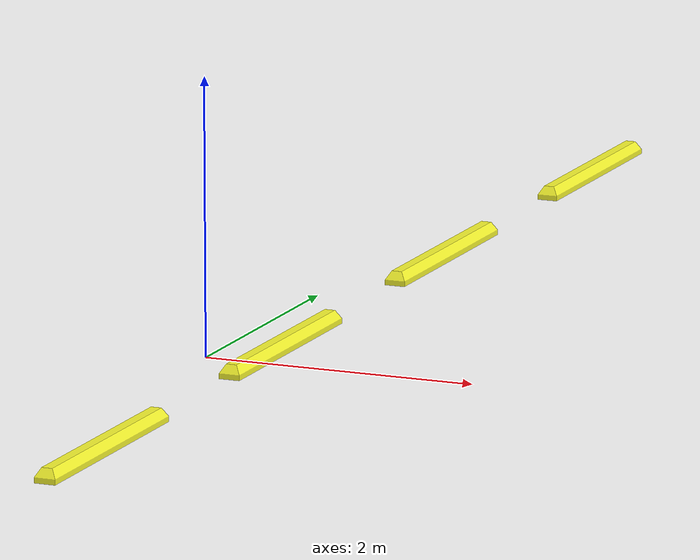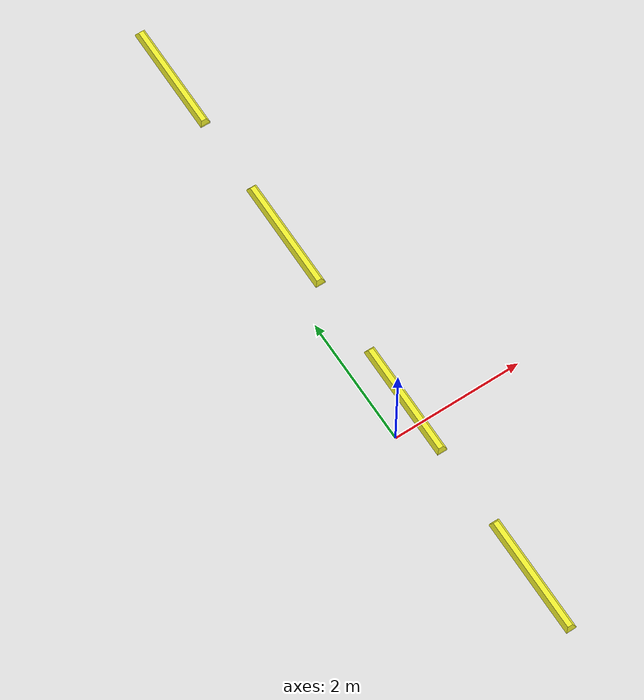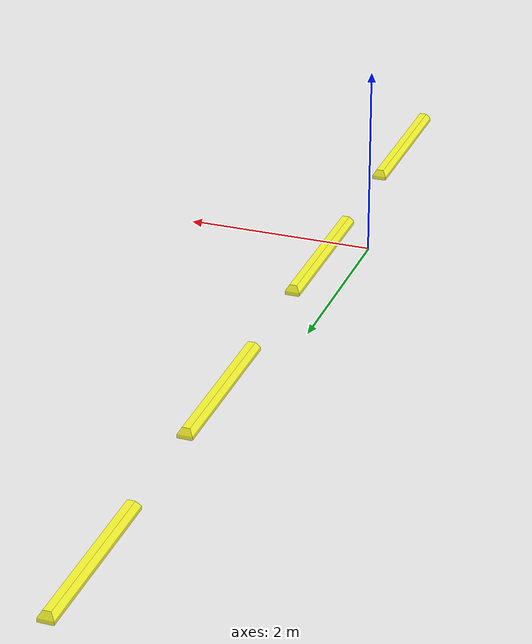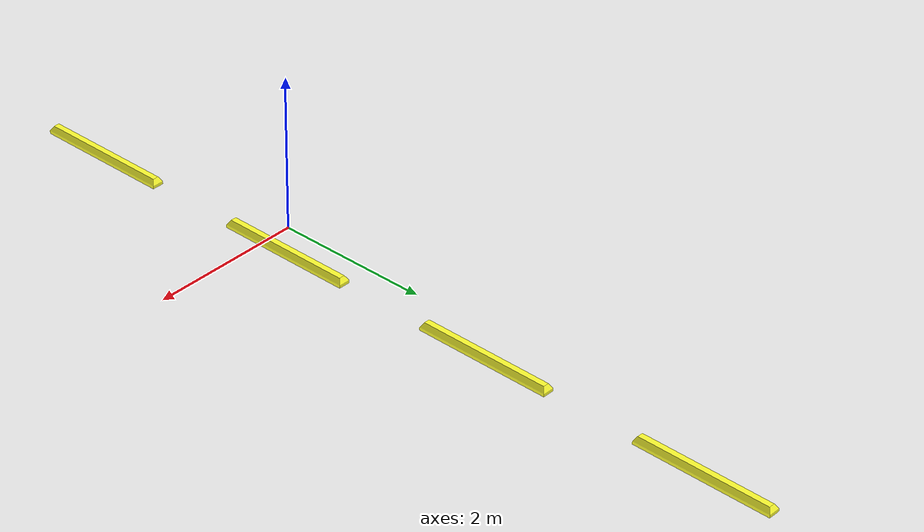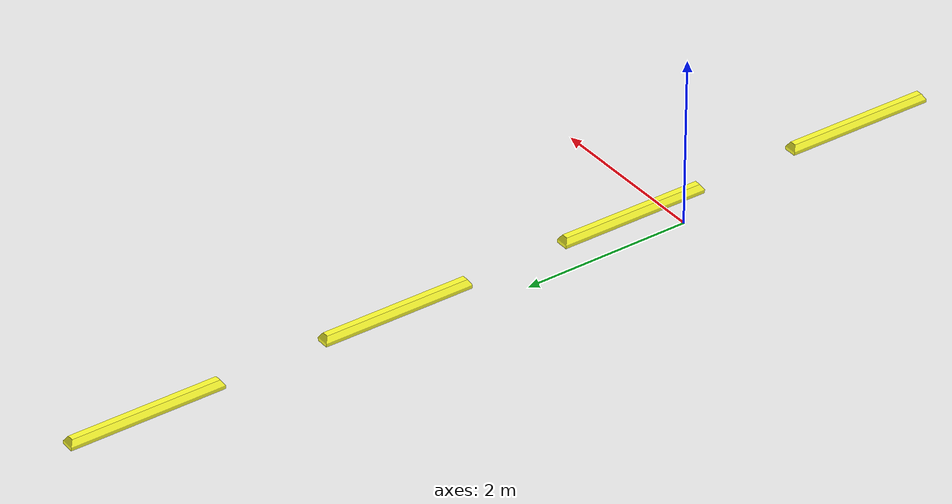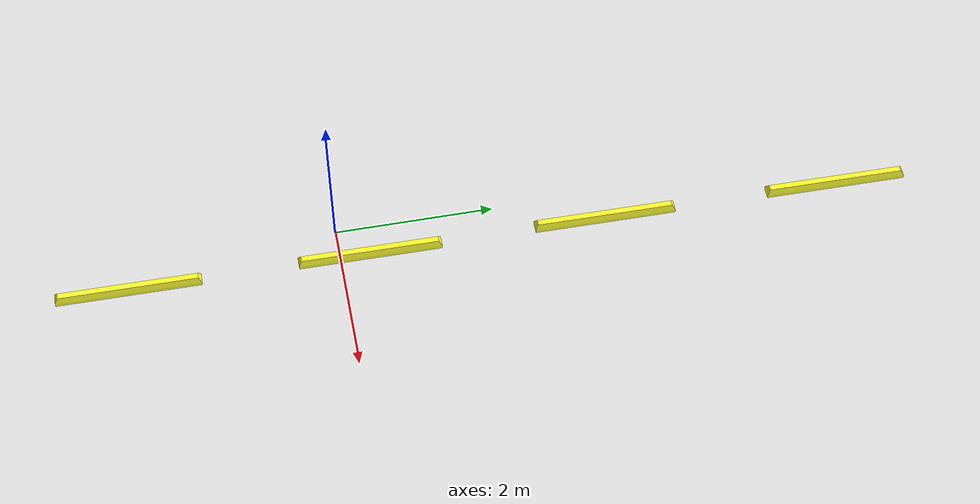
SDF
<?xml version='1.0'?>
<sdf version='1.7'>
  <model name='parking_version_3'>
    <model name='drc_practice_yellow_parking_block'>
      <static>1</static>
      <link name='link'>
        <visual name='visual'>
          <geometry>
            <mesh>
              <uri>model://drc_practice_yellow_parking_block/meshes/block.dae</uri>
            </mesh>
          </geometry>
        </visual>
        <collision name='collision'>
          <geometry>
            <mesh>
              <uri>model://drc_practice_yellow_parking_block/meshes/block.dae</uri>
            </mesh>
          </geometry>
          <max_contacts>10</max_contacts>
          <surface>
            <contact>
              <ode/>
            </contact>
            <bounce/>
            <friction>
              <torsional>
                <ode/>
              </torsional>
              <ode/>
            </friction>
          </surface>
        </collision>
        <self_collide>0</self_collide>
        <enable_wind>0</enable_wind>
        <kinematic>0</kinematic>
      </link>
      <pose>0.413366 6.39123 0 0 0 0</pose>
    </model>
    <model name='drc_practice_yellow_parking_block_clone_1'>
      <static>1</static>
      <link name='link'>
        <visual name='visual'>
          <geometry>
            <mesh>
              <uri>model://drc_practice_yellow_parking_block/meshes/block.dae</uri>
            </mesh>
          </geometry>
        </visual>
        <collision name='collision'>
          <geometry>
            <mesh>
              <uri>model://drc_practice_yellow_parking_block/meshes/block.dae</uri>
            </mesh>
          </geometry>
          <max_contacts>10</max_contacts>
          <surface>
            <contact>
              <ode/>
            </contact>
            <bounce/>
            <friction>
              <torsional>
                <ode/>
              </torsional>
              <ode/>
            </friction>
          </surface>
        </collision>
        <self_collide>0</self_collide>
        <enable_wind>0</enable_wind>
        <kinematic>0</kinematic>
      </link>
      <pose>0.405987 3.37653 0 0 0 0</pose>
    </model>
    <model name='drc_practice_yellow_parking_block_clone_1_clone'>
      <static>1</static>
      <link name='link'>
        <visual name='visual'>
          <geometry>
            <mesh>
              <uri>model://drc_practice_yellow_parking_block/meshes/block.dae</uri>
            </mesh>
          </geometry>
        </visual>
        <collision name='collision'>
          <geometry>
            <mesh>
              <uri>model://drc_practice_yellow_parking_block/meshes/block.dae</uri>
            </mesh>
          </geometry>
          <max_contacts>10</max_contacts>
          <surface>
            <contact>
              <ode/>
            </contact>
            <bounce/>
            <friction>
              <torsional>
                <ode/>
              </torsional>
              <ode/>
            </friction>
          </surface>
        </collision>
        <self_collide>0</self_collide>
        <enable_wind>0</enable_wind>
        <kinematic>0</kinematic>
      </link>
      <pose>0.410253 0.377816 0 0 0 0</pose>
    </model>
    <model name='drc_practice_yellow_parking_block_clone_1_clone_clone'>
      <static>1</static>
      <link name='link'>
        <visual name='visual'>
          <geometry>
            <mesh>
              <uri>model://drc_practice_yellow_parking_block/meshes/block.dae</uri>
            </mesh>
          </geometry>
        </visual>
        <collision name='collision'>
          <geometry>
            <mesh>
              <uri>model://drc_practice_yellow_parking_block/meshes/block.dae</uri>
            </mesh>
          </geometry>
          <max_contacts>10</max_contacts>
          <surface>
            <contact>
              <ode/>
            </contact>
            <bounce/>
            <friction>
              <torsional>
                <ode/>
              </torsional>
              <ode/>
            </friction>
          </surface>
        </collision>
        <self_collide>0</self_collide>
        <enable_wind>0</enable_wind>
        <kinematic>0</kinematic>
      </link>
      <pose>0.410395 -2.63114 0 0 0 0</pose>
    </model>
    <static>1</static>
    <allow_auto_disable>1</allow_auto_disable>
  </model>
</sdf>
